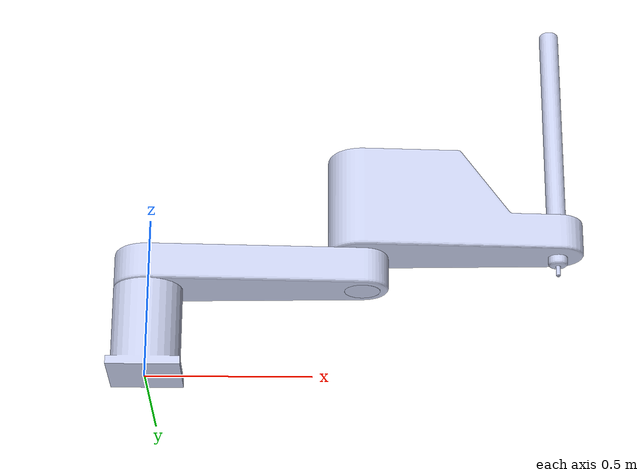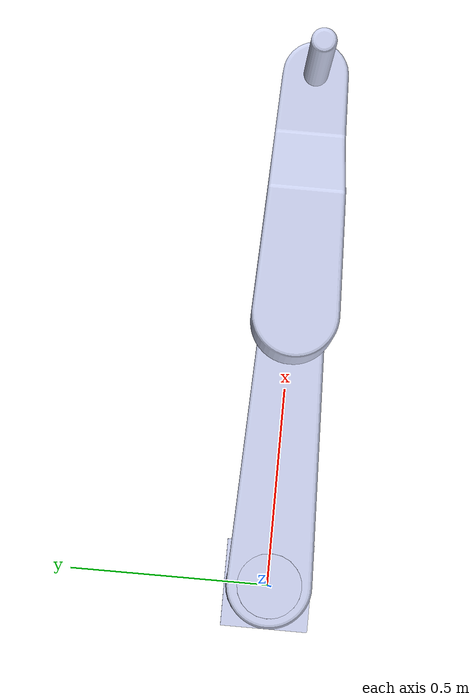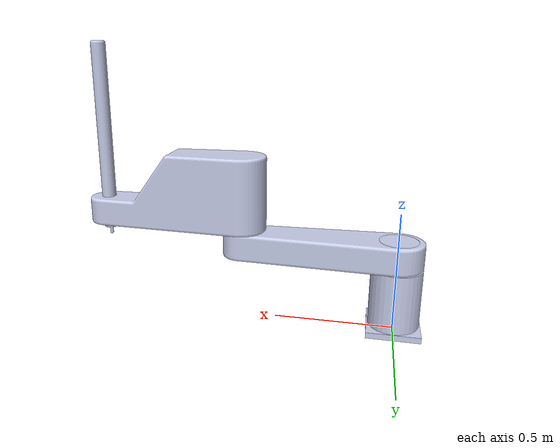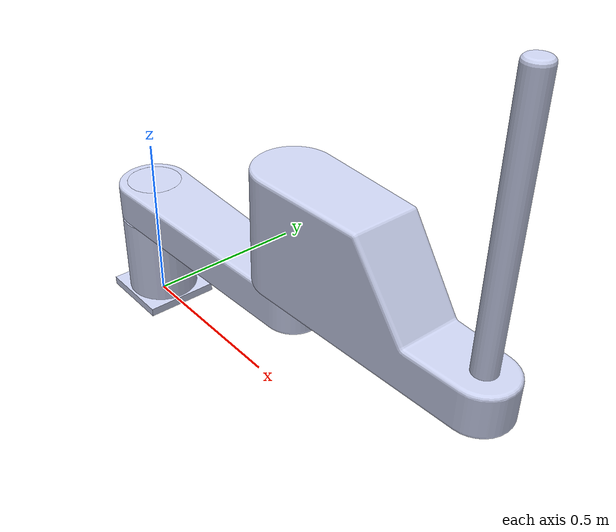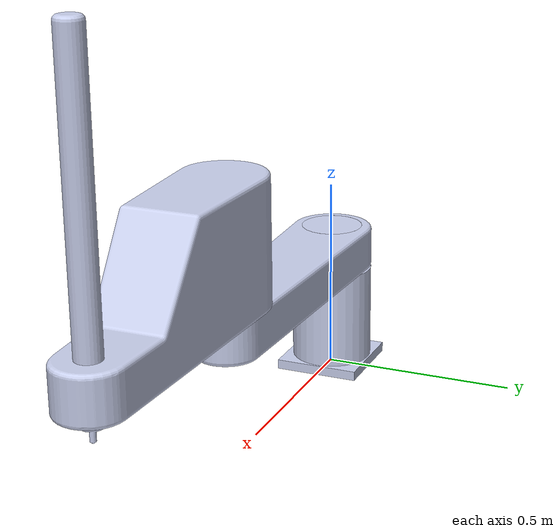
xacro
<?xml version="1.0"?>
<robot xmlns:xacro="http://www.ros.org/wiki/xacro" name="Scara Assembly1">
    <xacro:arg name="initial_positions_file" default="initial_positions.yaml" />

    <!-- Import Scara Assembly1 urdf file -->
    <xacro:include filename="$(find scara_robot_pkg)/urdf/scara_assembly.urdf" />

    <!-- Import control_xacro -->
    <xacro:include filename="Scara Assembly1.ros2_control.xacro" />

    <xacro:scara_assembly_ros2_control name="FakeSystem" initial_positions_file="$(arg initial_positions_file)"/>

</robot>

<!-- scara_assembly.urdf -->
<robot
  name="Scara Assembly1">
  <link
    name="base_link">
    <inertial>
      <origin
        xyz="0 0.00168973878682044 0.170983413772257"
        rpy="0 0 0" />
      <mass
        value="12.181226944499" />
      <inertia
        ixx="0.17468466573427"
        ixy="4.15759959089047E-18"
        ixz="2.94980095631604E-18"
        iyy="0.17468082989543"
        iyz="-0.000359769710444839"
        izz="0.0648964003406475" />
    </inertial>
    <visual>
      <origin
        xyz="0 0 0"
        rpy="0 0 0" />
      <geometry>
        <mesh
          filename="package://scara_robot_pkg/meshes/base_link.STL" />
      </geometry>
      <material
        name="">
        <color
          rgba="0.792156862745098 0.819607843137255 0.933333333333333 1" />
      </material>
    </visual>
    <collision>
      <origin
        xyz="0 0 0"
        rpy="0 0 0" />
      <geometry>
        <mesh
          filename="package://scara_robot_pkg/meshes/base_link.STL" />
      </geometry>
    </collision>
  </link>
  <link
    name="Link_1">
    <inertial>
      <origin
        xyz="0.315679111493496 0.00187609751792639 0.3325"
        rpy="0 0 0" />
      <mass
        value="13.501384910232" />
      <inertia
        ixx="0.0572222535179723"
        ixy="-9.50127835777007E-18"
        ixz="3.46444638425626E-18"
        iyy="0.554053995069199"
        iyz="-3.86417274088145E-18"
        izz="0.581830457702875" />
    </inertial>
    <visual>
      <origin
        xyz="0 0 0"
        rpy="0 0 0" />
      <geometry>
        <mesh
          filename="package://scara_robot_pkg/meshes/Link_1.STL" />
      </geometry>
      <material
        name="">
        <color
          rgba="0.792156862745098 0.819607843137255 0.933333333333333 1" />
      </material>
    </visual>
    <collision>
      <origin
        xyz="0 0 0"
        rpy="0 0 0" />
      <geometry>
        <mesh
          filename="package://scara_robot_pkg/meshes/Link_1.STL" />
      </geometry>
    </collision>
  </link>
  <joint
    name="Joint_1"
    type="revolute">
    <origin
      xyz="0 0 0"
      rpy="0 0 0" />
    <parent
      link="base_link" />
    <child
      link="Link_1" />
    <axis
      xyz="0 0 -1" />
    <limit
      lower="-2.53"
      upper="2.53"
      effort="0"
      velocity="7.1" />
  </joint>
  <link
    name="Link_2">
    <inertial>
      <origin
        xyz="0.190594383553034 8.92086404746806E-12 0.251287080531013"
        rpy="0 0 0" />
      <mass
        value="35.3260682085601" />
      <inertia
        ixx="0.434226114580085"
        ixy="-3.43699463108326E-11"
        ixz="0.141807287426322"
        iyy="1.54310732304715"
        iyz="-3.01122719618856E-11"
        izz="1.31387961173795" />
    </inertial>
    <visual>
      <origin
        xyz="0 0 0"
        rpy="0 0 0" />
      <geometry>
        <mesh
          filename="package://scara_robot_pkg/meshes/Link_2.STL" />
      </geometry>
      <material
        name="">
        <color
          rgba="0.792156862745098 0.819607843137255 0.933333333333333 1" />
      </material>
    </visual>
    <collision>
      <origin
        xyz="0 0 0"
        rpy="0 0 0" />
      <geometry>
        <mesh
          filename="package://scara_robot_pkg/meshes/Link_2.STL" />
      </geometry>
    </collision>
  </link>
  <joint
    name="Joint_2"
    type="revolute">
    <origin
      xyz="0.65 0.00187609751792639 0.275"
      rpy="0 0 0" />
    <parent
      link="Link_1" />
    <child
      link="Link_2" />
    <axis
      xyz="0 0 1" />
    <limit
      lower="-2.53"
      upper="2.53"
      effort="0"
      velocity="9.14" />
  </joint>
  <link
    name="Link_3">
    <inertial>
      <origin
        xyz="-2.22044604925031E-16 -2.22044604925031E-16 0.400848368011618"
        rpy="0 0 0" />
      <mass
        value="2.2590769242565" />
      <inertia
        ixx="0.119959265282819"
        ixy="-4.24291955451419E-21"
        ixz="-4.13754800332627E-20"
        iyy="0.119959265282819"
        iyz="-1.30016903886111E-19"
        izz="0.00101213903600915" />
    </inertial>
    <visual>
      <origin
        xyz="0 0 0"
        rpy="0 0 0" />
      <geometry>
        <mesh
          filename="package://scara_robot_pkg/meshes/Link_3.STL" />
      </geometry>
      <material
        name="">
        <color
          rgba="0.792156862745098 0.819607843137255 0.933333333333333 1" />
      </material>
    </visual>
    <collision>
      <origin
        xyz="0 0 0"
        rpy="0 0 0" />
      <geometry>
        <mesh
          filename="package://scara_robot_pkg/meshes/Link_3.STL" />
      </geometry>
    </collision>
  </link>
  <joint
    name="Joint_3"
    type="prismatic">
    <origin
      xyz="0.6 0 0.886978614262261"
      rpy="3.14159265358979 0 0" />
    <parent
      link="Link_2" />
    <child
      link="Link_3" />
    <axis
      xyz="0 0 -1" />
    <limit
      lower="-0.45"
      upper="0"
      effort="0"
      velocity="2.24" />
  </joint>
  <link
    name="Link_4">
    <inertial>
      <origin
        xyz="-2.22044604925031E-16 0 -0.00126874999999993"
        rpy="0 0 0" />
      <mass
        value="5.61232437594433E-05" />
      <inertia
        ixx="1.50285331365377E-10"
        ixy="-1.05664104903945E-26"
        ixz="-9.29971021358974E-30"
        iyy="1.50285331365377E-10"
        iyz="8.77391512839114E-27"
        izz="1.85627628734358E-10" />
    </inertial>
    <visual>
      <origin
        xyz="0 0 0"
        rpy="0 0 0" />
      <geometry>
        <mesh
          filename="package://scara_robot_pkg/meshes/Link_4.STL" />
      </geometry>
      <material
        name="">
        <color
          rgba="0.792156862745098 0.819607843137255 0.933333333333333 1" />
      </material>
    </visual>
    <collision>
      <origin
        xyz="0 0 0"
        rpy="0 0 0" />
      <geometry>
        <mesh
          filename="package://scara_robot_pkg/meshes/Link_4.STL" />
      </geometry>
    </collision>
  </link>
  <joint
    name="Joint_4"
    type="revolute">
    <origin
      xyz="0 0 0.8335"
      rpy="0 0 0" />
    <parent
      link="Link_3" />
    <child
      link="Link_4" />
    <axis
      xyz="0 0 -1" />
    <limit
      lower="-6.98"
      upper="6.98"
      effort="0"
      velocity="29.7" />
  </joint>
</robot>
